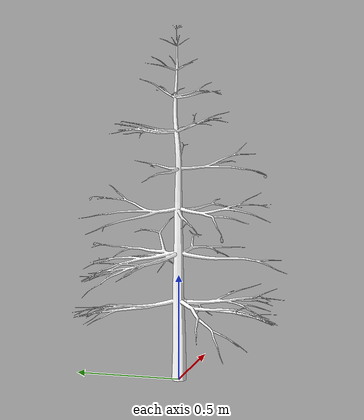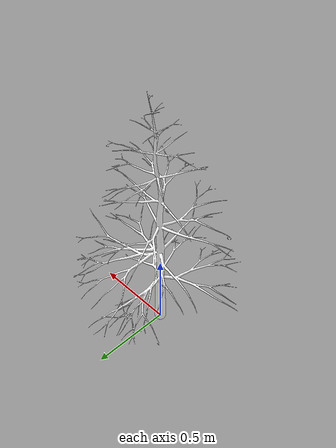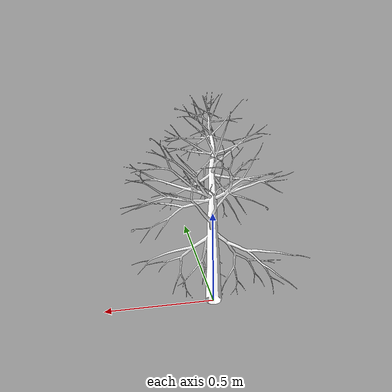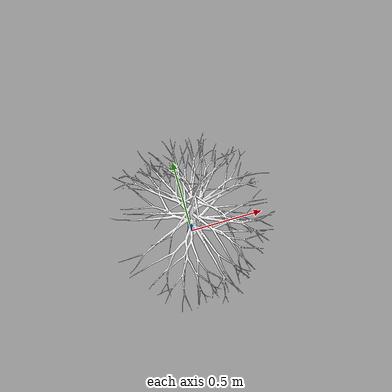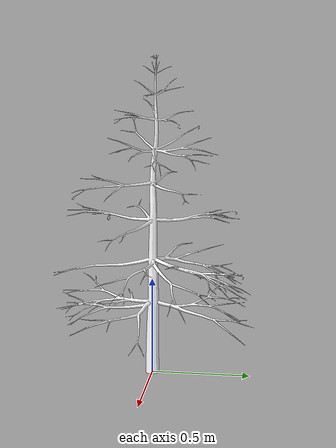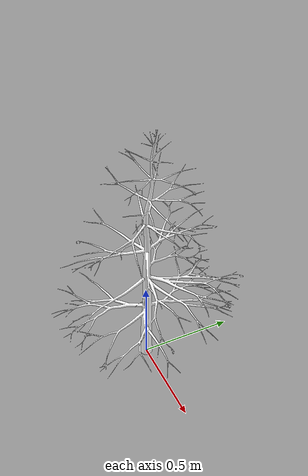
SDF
<sdf version="1.7">
    <model name="apple_tree_4">
        <static>true</static>
<link name="apple_tree_4_link">

            <visual name="apple_tree_4_visual">
                <geometry>
                <mesh>
                    <uri>model://apple_tree_4/meshes/apple_tree_4.obj</uri>
                </mesh>
                </geometry>

                <material>
                    <ambient>0.6 0.6 0.6 1</ambient>
                    <diffuse>1 1 1 1</diffuse>
                    <specular>0.1 0.1 0.1 1</specular>
                    <emissive>0 0 0 1</emissive>

                    <pbr>
                        <metal>
                        <!-- Base color -->
                        <albedo_map>model://apple_tree_4/materials/tree_basecolor_baked.png</albedo_map>

                        <!-- Normal map -->
                        <normal_map>model://apple_tree_4/materials/tree_normal_baked.png</normal_map>

                        <!-- Roughness map (preferred) -->
                        <roughness_map>model://apple_tree_4/materials/tree_roughness_baked.png</roughness_map>

                        <!-- For bark -->
                        <metalness>0.0</metalness>

                        <!-- Optional: if your roughness map is missing/ignored, fallback constant -->
                        </metal>
                    </pbr>
                </material>

            </visual>

            <collision name="apple_tree_4_collision">
                <geometry>
                    <mesh>
                        <uri>model://apple_tree_4/meshes/apple_tree_4.obj</uri>
                    </mesh>
                </geometry>
                <surface>
                <contact>
                    <collide_without_contact>true</collide_without_contact>
                    <collide_bitmask>0x00</collide_bitmask>
                </contact>
                </surface>
            </collision>

        </link>
    </model>
</sdf>
